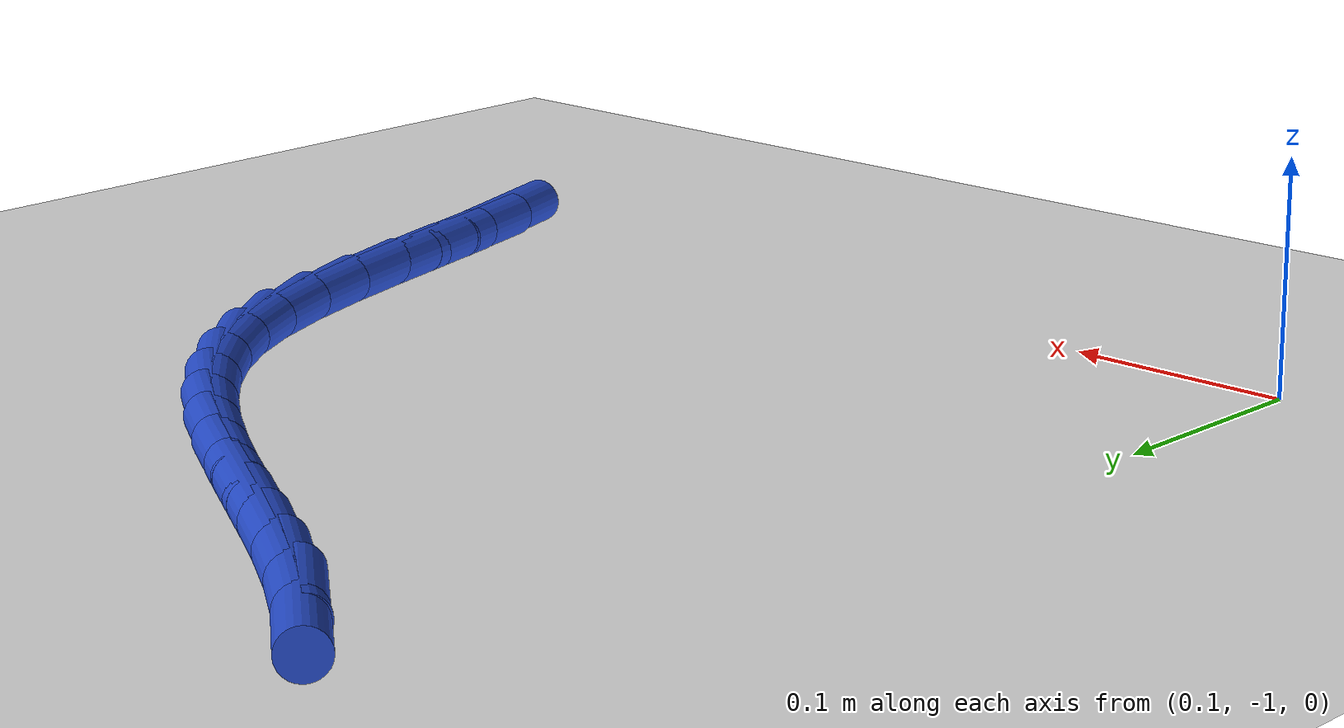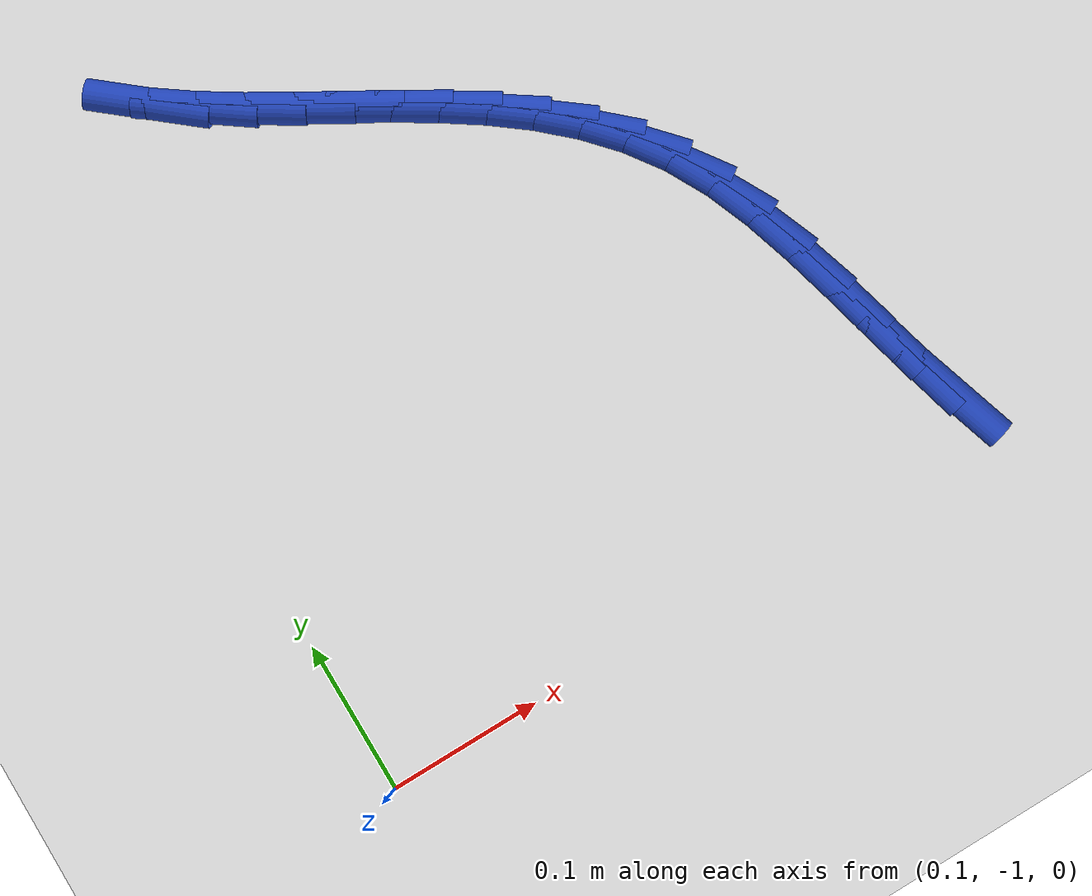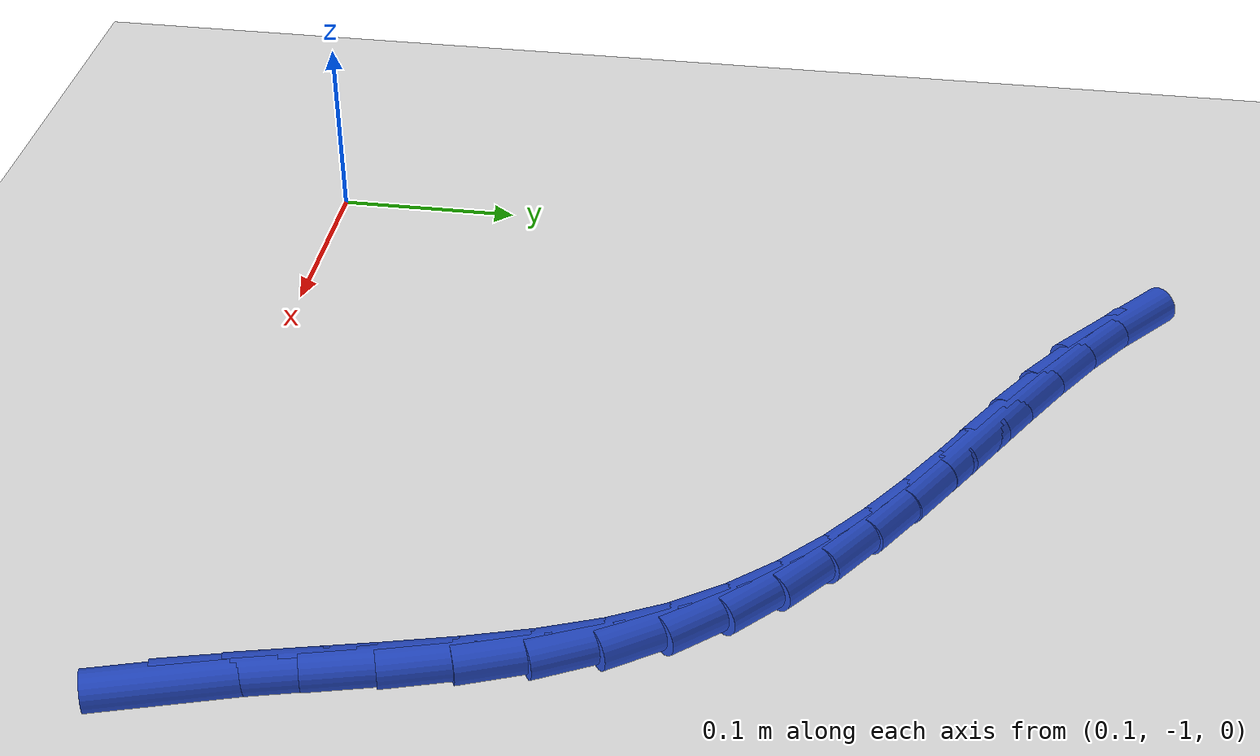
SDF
<sdf version="1.6">
 <world name="default">
  <model name="ground_plane">
   <static>1</static>
   <link name="link">
    <collision name="collision">
     <geometry><plane><normal>0 0 1</normal><size>100 100</size></plane></geometry>
     <surface><friction><ode><mu>100</mu><mu2>50</mu2></ode></friction></surface>
    </collision>
    <visual name="visual">
     <cast_shadows>0</cast_shadows>
     <geometry><plane><normal>0 0 1</normal><size>100 100</size></plane></geometry>
     <material>
      <script><uri>file://media/materials/scripts/gazebo.material</uri><name>Gazebo/WhiteGlow</name></script>
     </material>
    </visual>
   </link>
  </model>
  <model name="line">
   <link name="link_192">
    <pose>0.5191428908003245 -0.9696883251837543 0.01 0 1.57 -1.2702686445566793</pose>
    <collision name="collision">
     <geometry><cylinder><radius>0.01</radius><length>0.08</length></cylinder></geometry>
    </collision>
    <visual name="visual">
     <material>
      <script><name>Gazebo/Blue</name><uri>file://media/materials/scripts/gazebo.material</uri></script>
     </material>
     <geometry><cylinder><radius>0.01</radius><length>0.08</length></cylinder></geometry>
    </visual>
   </link>
   <link name="link_193">
    <pose>0.5101361948391677 -0.9406264536335414 0.01 0 1.57 -1.3151265955290377</pose>
    <collision name="collision">
     <geometry><cylinder><radius>0.01</radius><length>0.08</length></cylinder></geometry>
    </collision>
    <visual name="visual">
     <material>
      <script><name>Gazebo/Blue</name><uri>file://media/materials/scripts/gazebo.material</uri></script>
     </material>
     <geometry><cylinder><radius>0.01</radius><length>0.08</length></cylinder></geometry>
    </visual>
   </link>
   <link name="link_194">
    <pose>0.5019648778726468 -0.9093654540452295 0.01 0 1.57 -1.3281132939814806</pose>
    <collision name="collision">
     <geometry><cylinder><radius>0.01</radius><length>0.08</length></cylinder></geometry>
    </collision>
    <visual name="visual">
     <material>
      <script><name>Gazebo/Blue</name><uri>file://media/materials/scripts/gazebo.material</uri></script>
     </material>
     <geometry><cylinder><radius>0.01</radius><length>0.08</length></cylinder></geometry>
    </visual>
   </link>
   <link name="link_195">
    <pose>0.49391906958605447 -0.8768653169410651 0.01 0 1.57 -1.313357277067492</pose>
    <collision name="collision">
     <geometry><cylinder><radius>0.01</radius><length>0.08</length></cylinder></geometry>
    </collision>
    <visual name="visual">
     <material>
      <script><name>Gazebo/Blue</name><uri>file://media/materials/scripts/gazebo.material</uri></script>
     </material>
     <geometry><cylinder><radius>0.01</radius><length>0.08</length></cylinder></geometry>
    </visual>
   </link>
   <link name="link_196">
    <pose>0.48528889966468314 -0.8440860328432928 0.01 0 1.57 -1.270933078840712</pose>
    <collision name="collision">
     <geometry><cylinder><radius>0.01</radius><length>0.08</length></cylinder></geometry>
    </collision>
    <visual name="visual">
     <material>
      <script><name>Gazebo/Blue</name><uri>file://media/materials/scripts/gazebo.material</uri></script>
     </material>
     <geometry><cylinder><radius>0.01</radius><length>0.08</length></cylinder></geometry>
    </visual>
   </link>
   <link name="link_197">
    <pose>0.4753644977938249 -0.8119875922741575 0.01 0 1.57 -1.1975150762546605</pose>
    <collision name="collision">
     <geometry><cylinder><radius>0.01</radius><length>0.08</length></cylinder></geometry>
    </collision>
    <visual name="visual">
     <material>
      <script><name>Gazebo/Blue</name><uri>file://media/materials/scripts/gazebo.material</uri></script>
     </material>
     <geometry><cylinder><radius>0.01</radius><length>0.08</length></cylinder></geometry>
    </visual>
   </link>
   <link name="link_198">
    <pose>0.46343599365877275 -0.7815299857559065 0.01 0 1.57 -1.0875009471981625</pose>
    <collision name="collision">
     <geometry><cylinder><radius>0.01</radius><length>0.08</length></cylinder></geometry>
    </collision>
    <visual name="visual">
     <material>
      <script><name>Gazebo/Blue</name><uri>file://media/materials/scripts/gazebo.material</uri></script>
     </material>
     <geometry><cylinder><radius>0.01</radius><length>0.08</length></cylinder></geometry>
    </visual>
   </link>
   <link name="link_199">
    <pose>0.44880759885065813 -0.7536561085311081 0.01 0 1.57 -0.9576868669800345</pose>
    <collision name="collision">
     <geometry><cylinder><radius>0.01</radius><length>0.08</length></cylinder></geometry>
    </collision>
    <visual name="visual">
     <material>
      <script><name>Gazebo/Blue</name><uri>file://media/materials/scripts/gazebo.material</uri></script>
     </material>
     <geometry><cylinder><radius>0.01</radius><length>0.08</length></cylinder></geometry>
    </visual>
   </link>
   <link name="link_200">
    <pose>0.43126590456947056 -0.7287232522729176 0.01 0 1.57 -0.8389765225673901</pose>
    <collision name="collision">
     <geometry><cylinder><radius>0.01</radius><length>0.08</length></cylinder></geometry>
    </collision>
    <visual name="visual">
     <material>
      <script><name>Gazebo/Blue</name><uri>file://media/materials/scripts/gazebo.material</uri></script>
     </material>
     <geometry><cylinder><radius>0.01</radius><length>0.08</length></cylinder></geometry>
    </visual>
   </link>
   <link name="link_201">
    <pose>0.41118889590232566 -0.7063707629435361 0.01 0 1.57 -0.737729500868035</pose>
    <collision name="collision">
     <geometry><cylinder><radius>0.01</radius><length>0.08</length></cylinder></geometry>
    </collision>
    <visual name="visual">
     <material>
      <script><name>Gazebo/Blue</name><uri>file://media/materials/scripts/gazebo.material</uri></script>
     </material>
     <geometry><cylinder><radius>0.01</radius><length>0.08</length></cylinder></geometry>
    </visual>
   </link>
   <link name="link_202">
    <pose>0.3889907268291147 -0.6861940778649147 0.01 0 1.57 -0.6561382312472561</pose>
    <collision name="collision">
     <geometry><cylinder><radius>0.01</radius><length>0.08</length></cylinder></geometry>
    </collision>
    <visual name="visual">
     <material>
      <script><name>Gazebo/Blue</name><uri>file://media/materials/scripts/gazebo.material</uri></script>
     </material>
     <geometry><cylinder><radius>0.01</radius><length>0.08</length></cylinder></geometry>
    </visual>
   </link>
   <link name="link_203">
    <pose>0.36508555132972736 -0.6677886343590025 0.01 0 1.57 -0.5945697321631372</pose>
    <collision name="collision">
     <geometry><cylinder><radius>0.01</radius><length>0.08</length></cylinder></geometry>
    </collision>
    <visual name="visual">
     <material>
      <script><name>Gazebo/Blue</name><uri>file://media/materials/scripts/gazebo.material</uri></script>
     </material>
     <geometry><cylinder><radius>0.01</radius><length>0.08</length></cylinder></geometry>
    </visual>
   </link>
   <link name="link_204">
    <pose>0.33988752338405376 -0.6507498697477494 0.01 0 1.57 -0.552473222584398</pose>
    <collision name="collision">
     <geometry><cylinder><radius>0.01</radius><length>0.08</length></cylinder></geometry>
    </collision>
    <visual name="visual">
     <material>
      <script><name>Gazebo/Blue</name><uri>file://media/materials/scripts/gazebo.material</uri></script>
     </material>
     <geometry><cylinder><radius>0.01</radius><length>0.08</length></cylinder></geometry>
    </visual>
   </link>
   <link name="link_205">
    <pose>0.31381079697198405 -0.6346732213531051 0.01 0 1.57 -0.5291051485542977</pose>
    <collision name="collision">
     <geometry><cylinder><radius>0.01</radius><length>0.08</length></cylinder></geometry>
    </collision>
    <visual name="visual">
     <material>
      <script><name>Gazebo/Blue</name><uri>file://media/materials/scripts/gazebo.material</uri></script>
     </material>
     <geometry><cylinder><radius>0.01</radius><length>0.08</length></cylinder></geometry>
    </visual>
   </link>
   <link name="link_206">
    <pose>0.28726952607340794 -0.619154126497019 0.01 0 1.57 -0.5239766628750754</pose>
    <collision name="collision">
     <geometry><cylinder><radius>0.01</radius><length>0.08</length></cylinder></geometry>
    </collision>
    <visual name="visual">
     <material>
      <script><name>Gazebo/Blue</name><uri>file://media/materials/scripts/gazebo.material</uri></script>
     </material>
     <geometry><cylinder><radius>0.01</radius><length>0.08</length></cylinder></geometry>
    </visual>
   </link>
   <link name="link_207">
    <pose>0.26067786466821685 -0.6037880225014421 0.01 0 1.57 -0.5370749073625981</pose>
    <collision name="collision">
     <geometry><cylinder><radius>0.01</radius><length>0.08</length></cylinder></geometry>
    </collision>
    <visual name="visual">
     <material>
      <script><name>Gazebo/Blue</name><uri>file://media/materials/scripts/gazebo.material</uri></script>
     </material>
     <geometry><cylinder><radius>0.01</radius><length>0.08</length></cylinder></geometry>
    </visual>
   </link>
   <link name="link_208">
    <pose>0.2344499667363004 -0.5881703466883234 0.01 0 1.57 -0.5689179001386322</pose>
    <collision name="collision">
     <geometry><cylinder><radius>0.01</radius><length>0.08</length></cylinder></geometry>
    </collision>
    <visual name="visual">
     <material>
      <script><name>Gazebo/Blue</name><uri>file://media/materials/scripts/gazebo.material</uri></script>
     </material>
     <geometry><cylinder><radius>0.01</radius><length>0.08</length></cylinder></geometry>
    </visual>
   </link>
   <link name="link_209">
    <pose>0.20899998625754873 -0.5718965363796128 0.01 0 1.57 -0.6204522603626936</pose>
    <collision name="collision">
     <geometry><cylinder><radius>0.01</radius><length>0.08</length></cylinder></geometry>
    </collision>
    <visual name="visual">
     <material>
      <script><name>Gazebo/Blue</name><uri>file://media/materials/scripts/gazebo.material</uri></script>
     </material>
     <geometry><cylinder><radius>0.01</radius><length>0.08</length></cylinder></geometry>
    </visual>
   </link>
   <link name="link_210">
    <pose>0.18474207721185146 -0.5545620288972598 0.01 0 1.57 -0.6927382950325075</pose>
    <collision name="collision">
     <geometry><cylinder><radius>0.01</radius><length>0.08</length></cylinder></geometry>
    </collision>
    <visual name="visual">
     <material>
      <script><name>Gazebo/Blue</name><uri>file://media/materials/scripts/gazebo.material</uri></script>
     </material>
     <geometry><cylinder><radius>0.01</radius><length>0.08</length></cylinder></geometry>
    </visual>
   </link>
  </model>
 </world>
</sdf>
